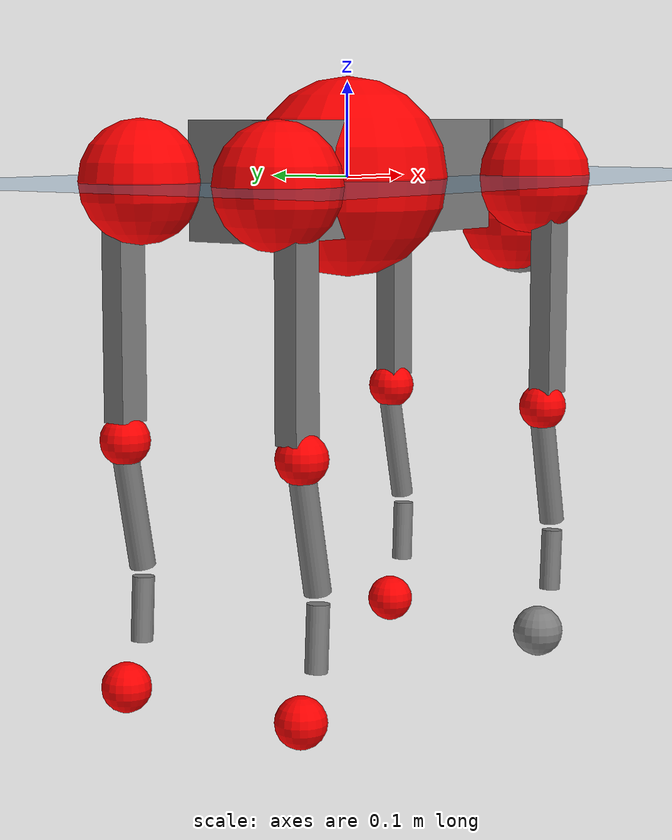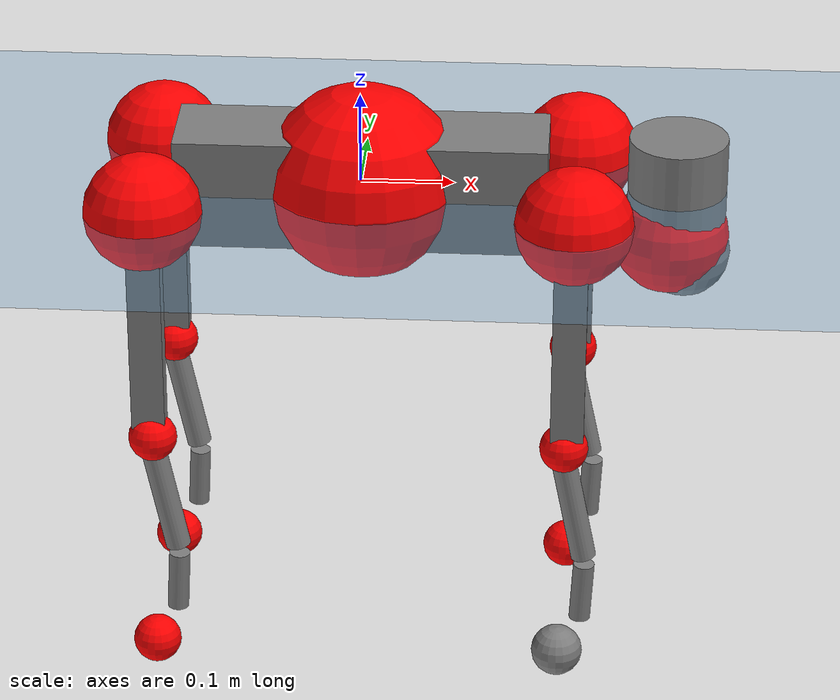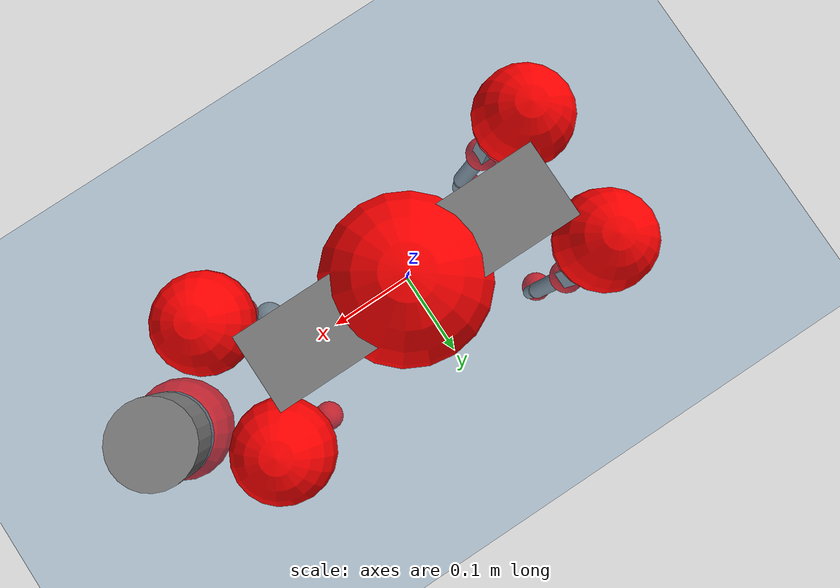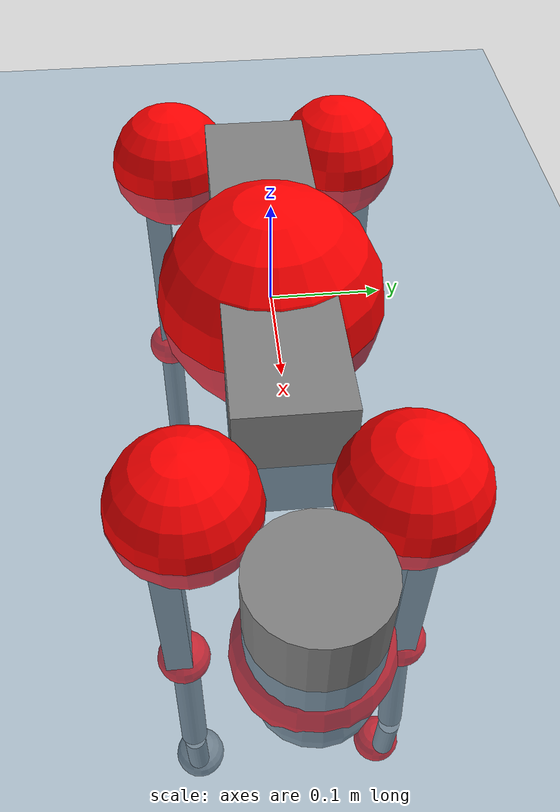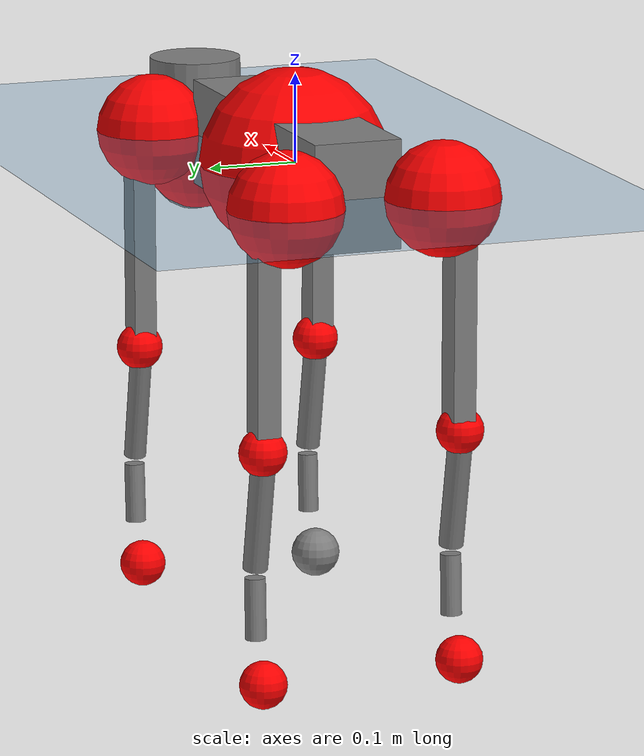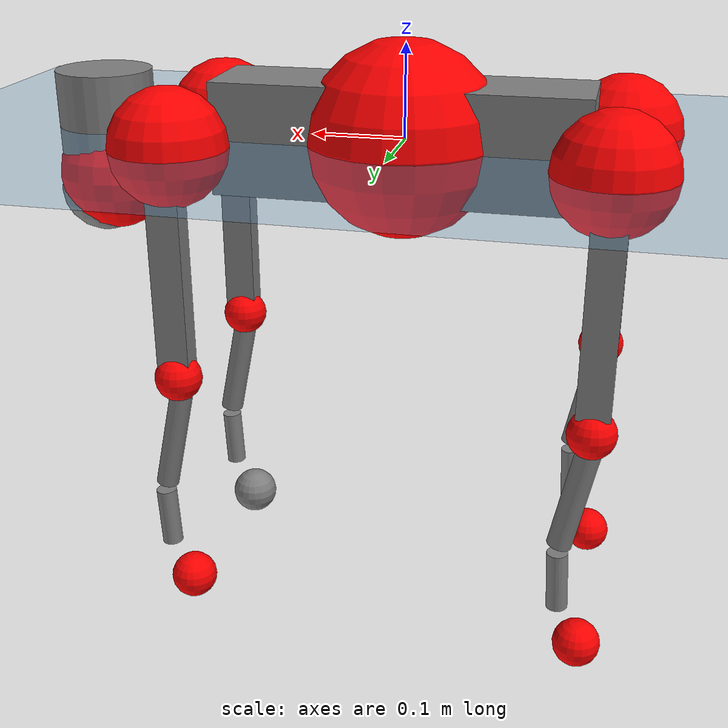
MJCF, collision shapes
<mujoco model="go2">
  <compiler angle="radian" assetdir="assets" balanceinertia="true" inertiafromgeom="false"/>

  <option timestep="0.005" density="1.2" viscosity="2e-05"/>

  <size nkey="1"/>

  <visual>
    <quality shadowsize="8192"/>
    <map shadowclip="0.5"/>
  </visual>

  <default>
    <default class="/">
      <geom contype="0" conaffinity="0" group="1" solref="-1000 -80"/>
      <site size="0.01 0.005 0.005" group="5"/>
      <general forcelimited="true" biastype="affine" gainprm="20" biasprm="0 -20 -0.5"/>
      <default class="go2">
        <joint armature="0.01" damping="0.01" frictionloss="0.2"/>
        <geom condim="1" margin="0.001"/>
        <default class="visual">
          <geom type="mesh" group="2"/>
        </default>
        <default class="collision">
          <geom group="3"/>
          <default class="foot">
            <geom size="0.022 0 0" condim="6" priority="1" friction="0.8 0.02 0.01" solimp="0.015 1 0.022"/>
          </default>
        </default>
        <default class="reward_collision_sphere">
          <geom group="5" rgba="1 0 0 1"/>
        </default>
      </default>
    </default>
  </default>

  <asset>
    <texture type="skybox" colorspace="auto" name="//unnamed_texture_0" builtin="gradient" rgb1="0.95 0.95 0.95" rgb2="0.95 0.95 0.95" width="100" height="600"/>
    <texture type="2d" colorspace="auto" name="texplane" builtin="checker" rgb1="0.345 0.575 0.748" rgb2="0.345 0.575 0.748" markrgb="1 1 1" width="512" height="512"/>
    <material name="MatPlane" class="/" texture="texplane" texuniform="true" texrepeat="2 2" specular="0.9"/>
    <material name="metal" class="/" rgba="0.9 0.95 0.95 1"/>
    <material name="black" class="/" rgba="0 0 0 1"/>
    <material name="white" class="/"/>
    <material name="gray" class="/" rgba="0.671705 0.692426 0.77427 1"/>
    <mesh name="base_0" class="/" file="base_0.obj"/>
    <mesh name="base_1" class="/" file="base_1.obj"/>
    <mesh name="base_2" class="/" file="base_2.obj"/>
    <mesh name="base_3" class="/" file="base_3.obj"/>
    <mesh name="base_4" class="/" file="base_4.obj"/>
    <mesh name="hip_0" class="/" file="hip_0.obj"/>
    <mesh name="hip_1" class="/" file="hip_1.obj"/>
    <mesh name="thigh_0" class="/" file="thigh_0.obj"/>
    <mesh name="thigh_1" class="/" file="thigh_1.obj"/>
    <mesh name="thigh_mirror_0" class="/" file="thigh_mirror_0.obj"/>
    <mesh name="thigh_mirror_1" class="/" file="thigh_mirror_1.obj"/>
    <mesh name="calf_0" class="/" file="calf_0.obj"/>
    <mesh name="calf_1" class="/" file="calf_1.obj"/>
    <mesh name="calf_mirror_0" class="/" file="calf_mirror_0.obj"/>
    <mesh name="calf_mirror_1" class="/" file="calf_mirror_1.obj"/>
    <mesh name="foot" class="/" file="foot.obj"/>
  </asset>

  <worldbody>
    <geom name="floor" class="/" size="100 100 0.125" type="plane" group="0" material="MatPlane"/>
    <light name="toplight_shadow" class="/" pos="0 0 5" dir="0.0990148 0.0990148 -0.990148" type="directional" ambient="0.04 0.04 0.04" diffuse="0.55 0.55 0.55" specular="0.12 0.12 0.12"/>
    <light name="toplight_fill" class="/" pos="0 0 5" dir="0.0990148 0.0990148 -0.990148" type="directional" castshadow="false" ambient="0.04 0.04 0.04" diffuse="0.3 0.3 0.3" specular="0.08 0.08 0.08"/>
    <body name="trunk" childclass="go2" pos="0.00153582 0.000469707 0.000553842" quat="1 -0.000239899 0.000815913 0.000367656">
      <inertial pos="0.0263072 0.002818 -0.00489128" quat="-0.0107341 0.712189 -0.0054509 0.701885" mass="8.35229" diaginertia="0.240063 0.0256518 0.0623932"/>
      <joint name="//unnamed_joint_0" type="free" armature="0" damping="0" frictionloss="0"/>
      <geom name="//unnamed_geom_1" class="visual" material="black" mesh="base_0"/>
      <geom name="//unnamed_geom_2" class="visual" material="black" mesh="base_1"/>
      <geom name="//unnamed_geom_3" class="visual" material="black" mesh="base_2"/>
      <geom name="//unnamed_geom_4" class="visual" material="white" mesh="base_3"/>
      <geom name="//unnamed_geom_5" class="visual" material="gray" mesh="base_4"/>
      <geom name="trunk_1" class="collision" size="0.198702 0.0493849 0.0602126" type="box"/>
      <geom name="trunk_2" class="collision" size="0.0528181 0.0475363" pos="0.336027 0 0.0121978" type="cylinder"/>
      <geom name="trunk_3" class="collision" size="0.049649" pos="0.345459 0 -0.0731867"/>
      <geom name="//unnamed_geom_9" class="reward_collision_sphere" size="0.105636"/>
      <geom name="//unnamed_geom_10" class="reward_collision_sphere" size="0.0633817" pos="0.330131 0 -0.05489"/>
      <site name="imu" pos="-0.00626485 -0.010747 0.0375895" size="0.0105636"/>
      <camera name="track" pos="0 -1.54053 0" quat="0.707107 0.707107 0 0" mode="trackcom"/>
      <camera name="ego_camera" pos="0.367861 0 0.05489" quat="-0.5 -0.5 0.5 0.5"/>
      <body name="FL_hip" pos="0.229683 0.0345931 -0.000638526" quat="1 0.000245514 0.000339188 -0.000199472">
        <inertial pos="-0.00939485 0.00061752 -0.00175454" quat="0.498113 0.498189 0.504493 0.499177" mass="0.827628" diaginertia="0.00209485 0.000161894 0.00132606"/>
        <joint name="FL_hip_joint" pos="0 0 0" axis="0.999969 -0.00740901 0.00256436" range="-1.07883 1.0634" armature="0.00841893" damping="0.0327629" frictionloss="0.185884"/>
        <geom name="//unnamed_geom_11" class="visual" material="metal" mesh="hip_0"/>
        <geom name="//unnamed_geom_12" class="visual" material="gray" mesh="hip_1"/>
        <geom name="//unnamed_geom_13" class="collision" size="0.0485927 0.0211272" pos="0 0.0616213 0" quat="0.707107 0.707107 0 0" type="cylinder"/>
        <geom name="//unnamed_geom_14" class="reward_collision_sphere" size="0.0633817" pos="0 0.0539187 0"/>
        <body name="FL_thigh" pos="0.000691981 0.0699094 0.000839314" quat="0.999998 -0.00153098 -0.000701467 0.000588856">
          <inertial pos="-0.00277523 -0.0166066 -0.0431139" quat="0.829223 0.0732209 -0.0238421 0.553588" mass="1.38081" diaginertia="0.0143102 0.00160334 0.00233314"/>
          <joint name="FL_thigh_joint" pos="0 0 0" axis="-0.0248094 0.999689 -0.00267429" stiffness="0.0112168" range="-1.61898 3.55089" armature="0.0117091" damping="0" frictionloss="0.240975"/>
          <geom name="//unnamed_geom_15" class="visual" material="metal" mesh="thigh_0"/>
          <geom name="//unnamed_geom_16" class="visual" material="gray" mesh="thigh_1"/>
          <geom name="//unnamed_geom_17" class="collision" size="0.112503 0.0129404 0.0179582" pos="0 0 -0.129906" quat="0.707107 0 0.707107 0" type="box"/>
          <body name="FL_calf" pos="-0.00187677 0.00238812 -0.255135" quat="1 -0.000161125 -0.000278817 -0.000826104">
            <inertial pos="0.00483274 -0.000783767 -0.174813" quat="0.709205 0.0120467 -0.010992 0.704813" mass="0.279808" diaginertia="0.00336881 0.000399198 0.000137541"/>
            <joint name="FL_calf_joint" pos="0 0 0" axis="0.0611013 0.997713 0.0289007" stiffness="0.0030194" range="-2.71901 -0.798527" armature="0.0111694" damping="0.0229793" frictionloss="0.211978"/>
            <geom name="//unnamed_geom_18" class="visual" material="gray" mesh="calf_0"/>
            <geom name="//unnamed_geom_19" class="visual" material="black" mesh="calf_1"/>
            <geom name="FL_calf0" class="collision" size="0.0126763 0.0633817" pos="0.00943233 0 -0.0731867" quat="0.994493 0 -0.104807 0" type="cylinder"/>
            <geom name="//unnamed_geom_21" class="collision" size="0.01162 0.0343318" pos="0.0235808 0 -0.180527" quat="0.999688 0 0.0249974 0" type="cylinder"/>
            <geom name="//unnamed_geom_22" class="visual" pos="0 0 -0.259813" quat="1 0 0 0" material="black" mesh="foot"/>
            <geom name="FL_foot" class="foot" size="0.0166085" pos="-0.00235808 0 -0.259813"/>
            <geom name="//unnamed_geom_24" class="reward_collision_sphere" size="0.0264091"/>
            <geom name="//unnamed_geom_25" class="reward_collision_sphere" size="0.0264091" pos="-0.00235808 0 -0.259813"/>
            <site name="FL_foot" class="foot" pos="-0.00235808 0 -0.259813" size="0.0105636"/>
          </body>
        </body>
      </body>
      <body name="FR_hip" pos="0.228265 -0.0348337 -0.00337249" quat="1 2.39286e-05 -7.278e-05 -0.000172829">
        <inertial pos="-0.00900964 -0.00300122 0.000853805" quat="0.49863 0.503719 0.498963 0.498669" mass="0.775669" diaginertia="0.00197762 0.000163202 0.00130005"/>
        <joint name="FR_hip_joint" pos="0 0 0" axis="0.999963 0.00703378 0.0049972" range="-0.98499 1.09078" armature="0.01195" damping="0" frictionloss="0.242145"/>
        <geom name="//unnamed_geom_26" class="visual" pos="0 -3.91596e-09 -1.67964e-07" quat="4.63268e-05 1 0 0" material="metal" mesh="hip_0"/>
        <geom name="//unnamed_geom_27" class="visual" pos="0 -6.34824e-09 4.15438e-07" quat="4.63268e-05 1 0 0" material="gray" mesh="hip_1"/>
        <geom name="//unnamed_geom_28" class="collision" size="0.0485927 0.0211272" pos="0 -0.0616213 0" quat="0.707107 0.707107 0 0" type="cylinder"/>
        <geom name="//unnamed_geom_29" class="reward_collision_sphere" size="0.0633817" pos="0 -0.0539187 0"/>
        <body name="FR_thigh" pos="-0.00161097 -0.077245 -0.000391451" quat="0.999999 0.000775745 0.000619489 -0.000349202">
          <inertial pos="-0.00423405 0.0193482 -0.041443" quat="0.549484 -0.00897087 0.0796405 0.831652" mass="1.44542" diaginertia="0.0140524 0.00161065 0.00245468"/>
          <joint name="FR_thigh_joint" pos="0 0 0" axis="-0.00581035 -0.99995 -0.00811645" range="-3.58305 1.56434" armature="0.0102319" damping="0.0129913" frictionloss="0.150867"/>
          <geom name="//unnamed_geom_30" class="visual" material="metal" mesh="thigh_mirror_0"/>
          <geom name="//unnamed_geom_31" class="visual" material="gray" mesh="thigh_mirror_1"/>
          <geom name="//unnamed_geom_32" class="collision" size="0.112503 0.0129404 0.0179582" pos="0 0 -0.129906" quat="0.707107 0 0.707107 0" type="box"/>
          <body name="FR_calf" pos="-0.00288842 0.00377834 -0.257892" quat="1 0.00044992 -7.58638e-06 -0.000225676">
            <inertial pos="0.00830706 -2.84539e-05 -0.176026" quat="0.701887 -0.00354382 0.00051472 0.712279" mass="0.276915" diaginertia="0.00359171 0.000406047 0.000145255"/>
            <joint name="FR_calf_joint" pos="0 0 0" axis="-0.000941916 -0.999991 -0.00410505" stiffness="0.00702655" range="0.828768 2.72147" armature="0.00933614" damping="0.0186424" frictionloss="0.255729"/>
            <geom name="//unnamed_geom_33" class="visual" material="gray" mesh="calf_mirror_0"/>
            <geom name="//unnamed_geom_34" class="visual" material="black" mesh="calf_mirror_1"/>
            <geom name="FR_calf0" class="collision" size="0.0137327 0.0633817" pos="0.0117904 0 -0.0731867" quat="0.995004 0 -0.0998334 0" type="cylinder"/>
            <geom name="//unnamed_geom_36" class="collision" size="0.01162 0.0343318" pos="0.0235808 0 -0.180527" quat="0.999688 0 0.0249974 0" type="cylinder"/>
            <geom name="//unnamed_geom_37" class="visual" pos="0 0 -0.259813" quat="1 0 0 0" material="black" mesh="foot"/>
            <geom name="FR_foot" class="foot" size="0.0281698" pos="-0.00235808 0 -0.259813"/>
            <geom name="//unnamed_geom_39" class="reward_collision_sphere" size="0.0264091"/>
            <geom name="//unnamed_geom_40" class="reward_collision_sphere" size="0.0264091" pos="-0.00235808 0 -0.259813"/>
            <site name="FR_foot" class="foot" pos="-0.00235808 0 -0.259813" size="0.0105636"/>
          </body>
        </body>
      </body>
      <body name="RL_hip" pos="-0.223487 0.0372837 -0.00103591" quat="0.999999 0.000996726 -0.000746987 8.12807e-05">
        <inertial pos="0.00784484 -0.00177085 0.00117945" quat="0.504607 0.498219 0.496844 0.500295" mass="0.810943" diaginertia="0.00201641 0.000157327 0.00138065"/>
        <joint name="RL_hip_joint" pos="0 0 0" axis="-0.999985 -0.00280139 -0.00477654" range="-1.00514 1.16076" armature="0.0123247" damping="0.00403223" frictionloss="0.206095"/>
        <geom name="//unnamed_geom_41" class="visual" pos="3.54889e-10 0 6.95665e-08" quat="4.63268e-05 0 1 0" material="metal" mesh="hip_0"/>
        <geom name="//unnamed_geom_42" class="visual" pos="5.75318e-10 0 6.16956e-08" quat="4.63268e-05 0 1 0" material="gray" mesh="hip_1"/>
        <geom name="//unnamed_geom_43" class="collision" size="0.0485927 0.0211272" pos="0 0.0616213 0" quat="0.707107 0.707107 0 0" type="cylinder"/>
        <geom name="//unnamed_geom_44" class="reward_collision_sphere" size="0.0633817" pos="0 0.0539187 0"/>
        <body name="RL_thigh" pos="-2.02442e-05 0.0788749 -0.0026097" quat="1 -1.02007e-05 4.21575e-08 1.02337e-05">
          <inertial pos="-0.00463797 -0.018952 -0.0420783" quat="0.827142 0.0816711 -0.024115 0.555503" mass="1.354" diaginertia="0.0135396 0.00158041 0.00244794"/>
          <joint name="RL_thigh_joint" pos="0 0 0" axis="-0.0143681 0.999895 0.00178767" range="-0.528591 4.49756" armature="0.00996096" damping="0.00175564" frictionloss="0.234124"/>
          <geom name="//unnamed_geom_45" class="visual" material="metal" mesh="thigh_0"/>
          <geom name="//unnamed_geom_46" class="visual" material="gray" mesh="thigh_1"/>
          <geom name="//unnamed_geom_47" class="collision" size="0.112503 0.0129404 0.0179582" pos="0 0 -0.129906" quat="0.707107 0 0.707107 0" type="box"/>
          <body name="RL_calf" pos="-2.27533e-06 0.00101459 -0.261942" quat="1 0.000693614 0.000376902 0.000315756">
            <inertial pos="0.0070814 -0.000457591 -0.173131" quat="0.722015 -0.01414 0.0116953 0.691634" mass="0.280923" diaginertia="0.00340614 0.000402452 0.000150638"/>
            <joint name="RL_calf_joint" pos="0 0 0" axis="-0.000150784 0.999985 0.00544044" stiffness="0.00751415" range="-2.70607 -0.844057" armature="0.0112151" damping="0" frictionloss="0.209748"/>
            <geom name="//unnamed_geom_48" class="visual" material="gray" mesh="calf_0"/>
            <geom name="//unnamed_geom_49" class="visual" material="black" mesh="calf_1"/>
            <geom name="RL_calf0" class="collision" size="0.0137327 0.0633817" pos="0.0117904 0 -0.0731867" quat="0.995004 0 -0.0998334 0" type="cylinder"/>
            <geom name="//unnamed_geom_51" class="collision" size="0.01162 0.0343318" pos="0.0235808 0 -0.180527" quat="0.999688 0 0.0249974 0" type="cylinder"/>
            <geom name="//unnamed_geom_52" class="visual" pos="0 0 -0.259813" quat="1 0 0 0" material="black" mesh="foot"/>
            <geom name="RL_foot" class="foot" size="0.0166172" pos="-0.00235808 0 -0.259813"/>
            <geom name="//unnamed_geom_54" class="reward_collision_sphere" size="0.0264091"/>
            <geom name="//unnamed_geom_55" class="reward_collision_sphere" size="0.0264091" pos="-0.00235808 0 -0.259813"/>
            <site name="RL_foot" class="foot" pos="-0.00235808 0 -0.259813" size="0.0105636"/>
          </body>
        </body>
      </body>
      <body name="RR_hip" pos="-0.226399 -0.0326522 -0.00178212" quat="1 7.5081e-05 -0.000392695 -0.000540571">
        <inertial pos="0.00985848 -0.00121408 -0.00259095" quat="0.497646 0.507418 0.494976 0.499874" mass="0.791285" diaginertia="0.00196432 0.000158467 0.00134504"/>
        <joint name="RR_hip_joint" pos="0 0 0" axis="-0.999996 -0.00131952 -0.00231206" range="-1.00281 0.955036" armature="0.0112399" damping="0.0172552" frictionloss="0.202527"/>
        <geom name="//unnamed_geom_56" class="visual" pos="-3.69042e-10 -3.91596e-09 2.3753e-07" quat="2.14617e-09 4.63268e-05 4.63268e-05 -1" material="metal" mesh="hip_0"/>
        <geom name="//unnamed_geom_57" class="visual" pos="-5.40315e-10 -6.34824e-09 -3.53743e-07" quat="2.14617e-09 4.63268e-05 4.63268e-05 -1" material="gray" mesh="hip_1"/>
        <geom name="//unnamed_geom_58" class="collision" size="0.0485927 0.0211272" pos="0 -0.0616213 0" quat="0.707107 0.707107 0 0" type="cylinder"/>
        <geom name="//unnamed_geom_59" class="reward_collision_sphere" size="0.0633817" pos="0 -0.0539187 0"/>
        <body name="RR_thigh" pos="0.00223254 -0.0748151 -0.00377046" quat="1 0.000149389 0.000323935 8.85294e-05">
          <inertial pos="-0.00510002 0.0148595 -0.0374768" quat="0.551879 -0.019333 0.0864049 0.829211" mass="1.52668" diaginertia="0.0148837 0.0016956 0.00260944"/>
          <joint name="RR_thigh_joint" pos="0 0 0" axis="-0.00848749 -0.999963 -0.00125141" range="-4.52555 0.509297" armature="0.00960261" damping="0" frictionloss="0.202415"/>
          <geom name="//unnamed_geom_60" class="visual" material="metal" mesh="thigh_mirror_0"/>
          <geom name="//unnamed_geom_61" class="visual" material="gray" mesh="thigh_mirror_1"/>
          <geom name="//unnamed_geom_62" class="collision" size="0.112503 0.0129404 0.0179582" pos="0 0 -0.129906" quat="0.707107 0 0.707107 0" type="box"/>
          <body name="RR_calf" pos="0.00337723 -0.00311467 -0.256549" quat="1 -0.000402856 0.000385252 -0.000174382">
            <inertial pos="0.00538868 0.000225461 -0.171835" quat="0.71058 0.000255681 0.00095316 0.703615" mass="0.296244" diaginertia="0.00342201 0.000393315 0.000146697"/>
            <joint name="RR_calf_joint" pos="0 0 0" axis="-0.00423698 -0.999966 -0.00707237" range="0.792613 2.67877" armature="0.0127731" damping="0.0232138" frictionloss="0.211827"/>
            <geom name="//unnamed_geom_63" class="visual" material="gray" mesh="calf_mirror_0"/>
            <geom name="//unnamed_geom_64" class="visual" material="black" mesh="calf_mirror_1"/>
            <geom name="RR_calf0" class="collision" size="0.0137327 0.0633817" pos="0.0117904 0 -0.0731867" quat="0.995004 0 -0.0998334 0" type="cylinder"/>
            <geom name="//unnamed_geom_66" class="collision" size="0.01162 0.0343318" pos="0.0235808 0 -0.180527" quat="0.999688 0 0.0249974 0" type="cylinder"/>
            <geom name="//unnamed_geom_67" class="visual" pos="0 0 -0.259813" quat="1 0 0 0" material="black" mesh="foot"/>
            <geom name="RR_foot" class="foot" size="0.0234219" pos="-0.00235808 0 -0.259813"/>
            <geom name="//unnamed_geom_69" class="reward_collision_sphere" size="0.0264091"/>
            <geom name="//unnamed_geom_70" class="reward_collision_sphere" size="0.0264091" pos="-0.00235808 0 -0.259813"/>
            <site name="RR_foot" class="foot" pos="-0.00235808 0 -0.259813" size="0.0105636"/>
          </body>
        </body>
      </body>
    </body>
  </worldbody>

  <contact>
    <pair class="/" geom1="floor" geom2="FL_foot" name="//unnamed_contact_0"/>
    <pair class="/" geom1="floor" geom2="FR_foot" name="//unnamed_contact_1"/>
    <pair class="/" geom1="floor" geom2="RL_foot" name="//unnamed_contact_2"/>
    <pair class="/" geom1="floor" geom2="RR_foot" name="//unnamed_contact_3"/>
  </contact>

  <actuator>
    <general name="FL_hip" class="/" joint="FL_hip_joint" forcerange="-22.7871 22.7871" gainprm="22.6137" biasprm="0 -22.6137 -0.493737"/>
    <general name="FL_thigh" class="/" joint="FL_thigh_joint" forcerange="-24.466 24.466" gainprm="22.6137" biasprm="0 -22.6137 -0.493737"/>
    <general name="FL_calf" class="/" joint="FL_calf_joint" forcerange="-43.2566 43.2566" gainprm="22.6137" biasprm="0 -22.6137 -0.493737"/>
    <general name="FR_hip" class="/" joint="FR_hip_joint" forcerange="-24.8328 24.8328" gainprm="22.6137" biasprm="0 -22.6137 -0.493737"/>
    <general name="FR_thigh" class="/" joint="FR_thigh_joint" forcerange="-26.3537 26.3537" gainprm="22.6137" biasprm="0 -22.6137 -0.493737"/>
    <general name="FR_calf" class="/" joint="FR_calf_joint" forcerange="-52.5696 52.5696" gainprm="22.6137" biasprm="0 -22.6137 -0.493737"/>
    <general name="RL_hip" class="/" joint="RL_hip_joint" forcerange="-25.0483 25.0483" gainprm="22.6137" biasprm="0 -22.6137 -0.493737"/>
    <general name="RL_thigh" class="/" joint="RL_thigh_joint" forcerange="-27.7363 27.7363" gainprm="22.6137" biasprm="0 -22.6137 -0.493737"/>
    <general name="RL_calf" class="/" joint="RL_calf_joint" forcerange="-43.4368 43.4368" gainprm="22.6137" biasprm="0 -22.6137 -0.493737"/>
    <general name="RR_hip" class="/" joint="RR_hip_joint" forcerange="-22.9197 22.9197" gainprm="22.6137" biasprm="0 -22.6137 -0.493737"/>
    <general name="RR_thigh" class="/" joint="RR_thigh_joint" forcerange="-28.8739 28.8739" gainprm="22.6137" biasprm="0 -22.6137 -0.493737"/>
    <general name="RR_calf" class="/" joint="RR_calf_joint" forcerange="-44.027 44.027" gainprm="22.6137" biasprm="0 -22.6137 -0.493737"/>
  </actuator>

  <sensor>
    <gyro site="imu" name="imu_angular_velocity"/>
    <velocimeter site="imu" name="imu_linear_velocity"/>
    <framelinvel objtype="site" objname="FL_foot" name="FL_foot_global_linear_velocity"/>
    <framelinvel objtype="site" objname="FR_foot" name="FR_foot_global_linear_velocity"/>
    <framelinvel objtype="site" objname="RL_foot" name="RL_foot_global_linear_velocity"/>
    <framelinvel objtype="site" objname="RR_foot" name="RR_foot_global_linear_velocity"/>
  </sensor>

  <keyframe>
    <key name="home" qpos="0 0 0.325 1 0 0 0 0.1 0.8 -1.5 -0.1 -0.8 1.5 -0.1 0.8 -1.5 0.1 -0.8 1.5"/>
  </keyframe>
</mujoco>
